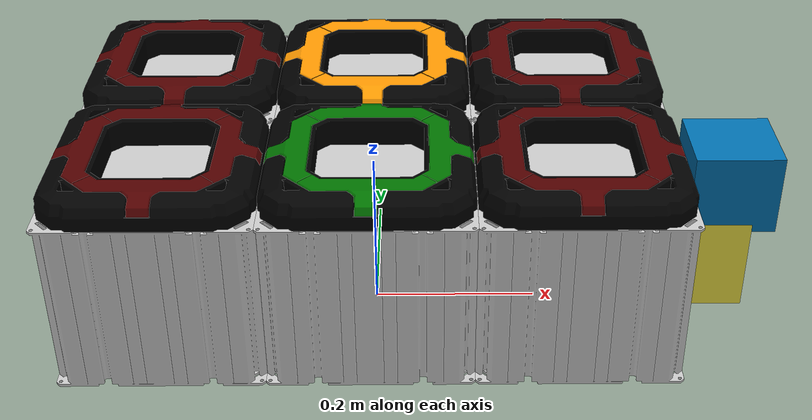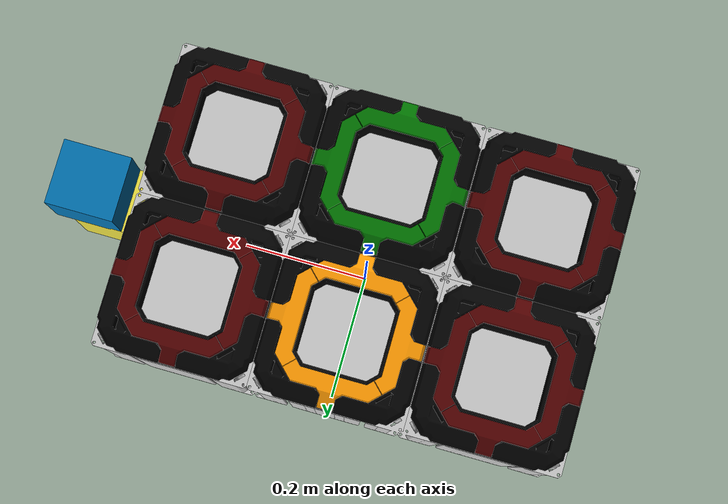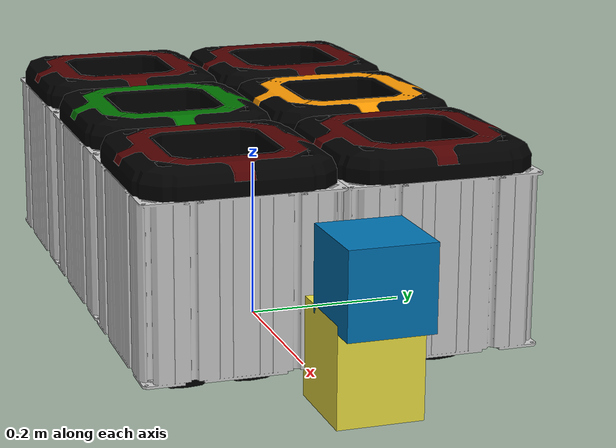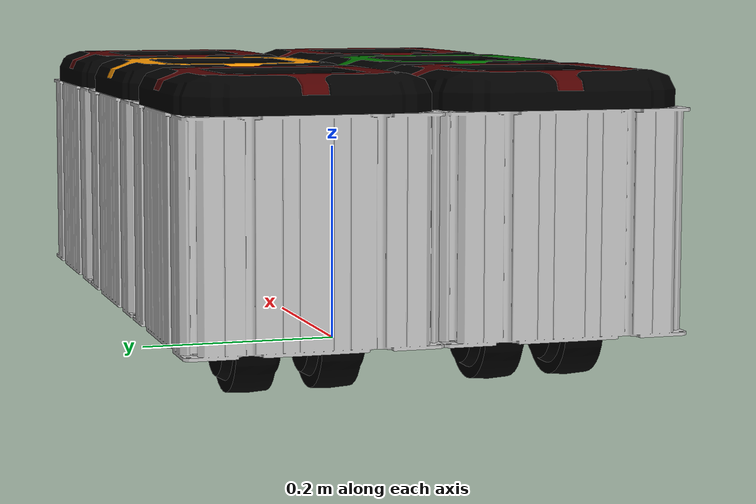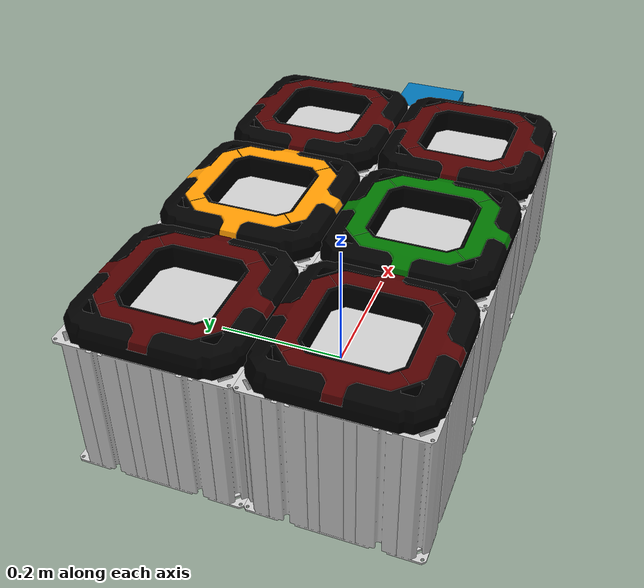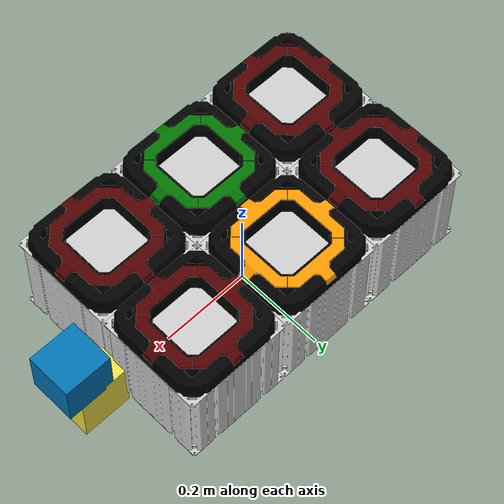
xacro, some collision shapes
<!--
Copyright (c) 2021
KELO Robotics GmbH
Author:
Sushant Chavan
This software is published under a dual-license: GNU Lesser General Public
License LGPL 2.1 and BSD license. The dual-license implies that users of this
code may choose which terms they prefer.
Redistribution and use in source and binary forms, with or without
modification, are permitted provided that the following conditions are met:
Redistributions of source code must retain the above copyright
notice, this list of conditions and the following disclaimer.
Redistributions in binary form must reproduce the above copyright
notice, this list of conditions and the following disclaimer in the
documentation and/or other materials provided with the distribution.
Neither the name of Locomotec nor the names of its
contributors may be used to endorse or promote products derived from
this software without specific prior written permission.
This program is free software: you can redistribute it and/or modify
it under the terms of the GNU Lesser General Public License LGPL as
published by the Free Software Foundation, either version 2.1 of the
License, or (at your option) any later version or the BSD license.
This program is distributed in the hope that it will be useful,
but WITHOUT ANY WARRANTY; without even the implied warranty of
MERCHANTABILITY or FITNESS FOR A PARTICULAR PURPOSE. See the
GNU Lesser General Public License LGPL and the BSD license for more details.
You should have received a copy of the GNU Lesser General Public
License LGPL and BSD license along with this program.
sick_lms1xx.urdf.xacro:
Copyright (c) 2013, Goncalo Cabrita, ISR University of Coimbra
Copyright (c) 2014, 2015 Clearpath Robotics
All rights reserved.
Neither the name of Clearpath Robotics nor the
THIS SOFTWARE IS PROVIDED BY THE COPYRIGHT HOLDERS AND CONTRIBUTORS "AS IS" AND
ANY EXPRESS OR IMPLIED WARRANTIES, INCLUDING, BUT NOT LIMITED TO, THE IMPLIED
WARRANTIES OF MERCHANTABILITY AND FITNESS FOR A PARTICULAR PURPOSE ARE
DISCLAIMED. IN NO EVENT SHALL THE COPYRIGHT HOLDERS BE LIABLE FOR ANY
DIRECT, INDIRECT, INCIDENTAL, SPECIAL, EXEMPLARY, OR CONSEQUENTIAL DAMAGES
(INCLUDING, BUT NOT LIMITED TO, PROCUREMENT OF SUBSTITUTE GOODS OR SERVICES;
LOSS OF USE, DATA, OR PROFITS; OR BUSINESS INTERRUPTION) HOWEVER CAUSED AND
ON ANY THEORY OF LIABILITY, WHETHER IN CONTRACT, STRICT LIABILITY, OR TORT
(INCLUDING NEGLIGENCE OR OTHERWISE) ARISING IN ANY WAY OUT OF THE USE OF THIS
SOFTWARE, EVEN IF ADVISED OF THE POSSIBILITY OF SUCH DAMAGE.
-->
<?xml version='1.0'?>

<robot xmlns:xacro="http://ros.org/wiki/xacro" name="robile3_config" >

    <!-- Include desired robile bricks -->
    <xacro:include filename="$(find robile_description)/urdf/robile_bricks/robile_active_wheel_brick.urdf.xacro" />
    <xacro:include filename="$(find robile_description)/urdf/robile_bricks/robile_cpu_brick.urdf.xacro" />
    <xacro:include filename="$(find robile_description)/urdf/robile_bricks/robile_master_battery_brick.urdf.xacro" />

    <link name="base_link"/>

    <!-- Build platform using robile bricks -->
    <xacro:robile_active_wheel_brick name="robile_1" parent="base_link">
        <origin xyz="0.233 0.1165 0.05" rpy="0.0 0.0 0.0"/>
    </xacro:robile_active_wheel_brick>

    <xacro:robile_active_wheel_brick name="robile_2" parent="base_link">
        <origin xyz="0.233 -0.1165 0.05" rpy="0.0 0.0 0.0"/>
    </xacro:robile_active_wheel_brick>

    <xacro:robile_cpu_brick name="robile_3" parent="base_link">
        <origin xyz="0.0 0.1165 0.05" rpy="0.0 0.0 0.0"/>
    </xacro:robile_cpu_brick>

    <xacro:robile_master_battery_brick name="robile_4" parent="base_link">
        <origin xyz="0.0 -0.1165 0.05" rpy="0.0 0.0 0.0"/>
    </xacro:robile_master_battery_brick>

    <xacro:robile_active_wheel_brick name="robile_5" parent="base_link">
        <origin xyz="-0.233 0.1165 0.05" rpy="0.0 0.0 0.0"/>
    </xacro:robile_active_wheel_brick>

    <xacro:robile_active_wheel_brick name="robile_6" parent="base_link">
        <origin xyz="-0.233 -0.1165 0.05" rpy="0.0 0.0 0.0"/>
    </xacro:robile_active_wheel_brick>

    <!-- LASER -->
    <xacro:arg name="laser_enabled" default="true" />
    <xacro:include filename="$(find robile_description)/urdf/sensors/sick_lms1xx_mount.urdf.xacro" />

    <xacro:if value="$(arg laser_enabled)">
       <xacro:sick_lms1xx_mount prefix="base"/>
       <xacro:sick_lms1xx frame="base_laser" topic="scan"/>
       <joint name="laser_mount_joint" type="fixed">
         <origin xyz="0.4 0.0 0.08" rpy="0 0 0" />
         <parent link="base_link" />
         <child link="base_laser_mount" />
       </joint>
    </xacro:if>

</robot>

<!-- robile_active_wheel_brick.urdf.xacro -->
<robot xmlns:xacro="http://www.ros.org/wiki/xacro">

    <xacro:macro name="robile_active_wheel_brick" params="name parent *origin movable_joints:=true">

        <!-- Include xacro files-->
        <xacro:include filename="$(find robile_description)/urdf/base_macros/brick_housing.urdf.xacro" />
        <xacro:include filename="$(find robile_description)/urdf/base_macros/kelo_drive.urdf.xacro" />

        <joint name="${name}_joint" type="fixed">
            <xacro:insert_block name="origin" />
            <parent link="${parent}"/>
            <child link="${name}_link" />
        </joint>

        <xacro:brick_housing name="${name}" with_wheel="true" color="red"/>

        <xacro:kelo_drive name="${name}_drive" parent="${name}_link" movable_joints="${movable_joints}">
            <origin xyz="0 0 0" rpy="0 0 0.0"/>
        </xacro:kelo_drive>

    </xacro:macro>

</robot>

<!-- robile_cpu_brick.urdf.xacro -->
<robot xmlns:xacro="http://www.ros.org/wiki/xacro">

    <xacro:macro name="robile_cpu_brick" params="name parent *origin">

        <xacro:include filename="$(find robile_description)/urdf/base_macros/brick_housing.urdf.xacro" />

        <joint name="${name}_joint" type="fixed">
            <xacro:insert_block name="origin" />
            <parent link="${parent}"/>
            <child link="${name}_link" />
        </joint>

        <xacro:brick_housing name="${name}"/>

    </xacro:macro>

</robot>

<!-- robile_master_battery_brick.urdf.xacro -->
<robot xmlns:xacro="http://www.ros.org/wiki/xacro">

    <xacro:macro name="robile_master_battery_brick" params="name parent *origin">

        <xacro:include filename="$(find robile_description)/urdf/base_macros/brick_housing.urdf.xacro" />

        <joint name="${name}_joint" type="fixed">
            <xacro:insert_block name="origin" />
            <parent link="${parent}"/>
            <child link="${name}_link" />
        </joint>

        <xacro:brick_housing name="${name}" color="green"/>

    </xacro:macro>

</robot>

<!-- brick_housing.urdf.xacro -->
<robot xmlns:xacro="http://www.ros.org/wiki/xacro">

    <xacro:macro name="brick_housing" params="name color:=yellow with_wheel:=false">

        <!-- Include required xacro files -->
        <xacro:include filename="$(find robile_description)/urdf/base_macros/common.xacro" />

        <!-- Properties for a robile brick -->
        <xacro:property name="robile_size_x" value="0.233"/>
        <xacro:property name="robile_size_y" value="0.233"/>
        <xacro:property name="robile_size_z" value="0.239"/>
        <xacro:property name="center_of_mass_x" value="0.0005"/>
        <xacro:property name="center_of_mass_y" value="0.0001"/>
        <xacro:property name="center_of_mass_z" value="0.119"/>

        <link name="${name}_link">

            <!-- Aluminium casing of the robile -->
            <visual>
                <origin xyz="0 0 0" rpy="0 0 0"/>
                <geometry>
                    <xacro:if value="${with_wheel}">
                        <mesh filename="file://$(find robile_description)/meshes/robile_brick_housing/wheeled_brick_housing.dae" scale="1 1 1"/>
                    </xacro:if>
                    <xacro:unless value="${with_wheel}">
                        <mesh filename="file://$(find robile_description)/meshes/robile_brick_housing/general_brick_housing.dae" scale="1 1 1"/>
                    </xacro:unless>
                </geometry>
            </visual>

            <!-- robile lid -->
            <visual>
                <origin xyz="0 0 0" rpy="0 0 0"/>
                <geometry>
                    <mesh filename="file://$(find robile_description)/meshes/robile_brick_housing/lid.dae" scale="1 1 1"/>
                </geometry>
            </visual>

            <!-- robile lid cover (color passed as a parameter) -->
            <visual>
                <origin xyz="0 0 0" rpy="0 0 0"/>
                <geometry>
                    <mesh filename="file://$(find robile_description)/meshes/robile_brick_housing/lid_cover_${color}.dae" scale="1 1 1"/>
                </geometry>
            </visual>

            <!-- Collision box for brick housing -->
            <collision>
                <origin xyz="${center_of_mass_x} ${center_of_mass_y} ${center_of_mass_z}" rpy="0 0 0"/>
                <geometry>
                    <box size="${robile_size_x} ${robile_size_y} ${robile_size_z}" />
                </geometry>
            </collision>

            <!-- Inertia for brick housing -->
            <xacro:cuboid_inertia mass="5.0"
                                length="${robile_size_x}"
                                breadth="${robile_size_y}"
                                height="${robile_size_z}"
                                center_of_mass_x="${center_of_mass_x}"
                                center_of_mass_y="${center_of_mass_y}"
                                center_of_mass_z="${center_of_mass_z}"/>
        </link>

    </xacro:macro>

</robot>

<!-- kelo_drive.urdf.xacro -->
<robot xmlns:xacro="http://www.ros.org/wiki/xacro">

    <xacro:macro name="kelo_drive" params="name parent *origin movable_joints:=true">

        <xacro:include filename="$(find robile_description)/urdf/base_macros/common.xacro" />
        <xacro:include filename="$(find robile_description)/urdf/base_macros/kelo_drive_wheel.urdf.xacro" />

        <!-- PIVOT -->
        <xacro:if value="${movable_joints}">
            <joint name="${name}_pivot_joint" type="continuous">
                <xacro:insert_block name="origin" />
                <axis xyz="0 0 1"/>
                <parent link="${parent}"/>
                <child link="${name}_pivot_link" />
            </joint>

            <transmission name="${name}_pivot_transmission">
                <type>transmission_interface/SimpleTransmission</type>
                <joint name="${name}_pivot_joint">
                    <hardwareInterface>hardware_interface/EffortJointInterface</hardwareInterface>
                </joint>
                <actuator name="${name}_pivot_motor">
                    <hardwareInterface>hardware_interface/EffortJointInterface</hardwareInterface>
                    <mechanicalReduction>1</mechanicalReduction>
                </actuator>
            </transmission>
        </xacro:if>
        <xacro:unless value="${movable_joints}">
            <joint name="${name}_pivot_joint" type="fixed">
                <xacro:insert_block name="origin" />
                <axis xyz="0 0 1"/>
                <parent link="${parent}"/>
                <child link="${name}_pivot_link" />
            </joint>
        </xacro:unless>

        <link name="${name}_pivot_link">
            <visual>
                <origin xyz="0 0 0" rpy="0 0 0"/>
                <geometry>
                    <mesh filename="file://$(find robile_description)/meshes/kelo_drive/kelo_drive_base.dae" scale="1 1 1"/>
                </geometry>
            </visual>

            <!--TODO: Set the correct collisions -->
            <collision>
                <origin xyz="0 0 0.07" rpy="0 0 0"/>
                <geometry>
                    <box size="0.105 0.154 0.025" />
                </geometry>
            </collision>

            <!--TODO: Set the correct inertia-->
            <xacro:cuboid_inertia mass="10.0" length="0.233" breadth="0.233" height="0.233"/>
        </link>

        <!-- LEFT HUB WHEEL -->
        <xacro:kelo_drive_wheel name="${name}_left_hub_wheel" parent="${name}_pivot_link" movable_joints="${movable_joints}">
            <origin xyz="-0.01 0.039326 0.001514" rpy="0 0 0.0"/>
        </xacro:kelo_drive_wheel>

        <!-- RIGHT HUB WHEEL -->
        <xacro:kelo_drive_wheel name="${name}_right_hub_wheel" parent="${name}_pivot_link" movable_joints="${movable_joints}">
            <origin xyz="-0.01 -0.039326 0.001514" rpy="0 0 0.0"/>
        </xacro:kelo_drive_wheel>

    </xacro:macro>

</robot>

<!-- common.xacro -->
<robot xmlns:xacro="http://www.ros.org/wiki/xacro">

    <xacro:macro name="cylinder_inertia" params="mass length radius
        center_of_mass_x:=0 center_of_mass_y:=0 center_of_mass_z:=0
        center_of_mass_roll:=0 center_of_mass_pitch:=0 center_of_mass_yaw:=0">
        <inertial>
            <origin xyz="${center_of_mass_x} ${center_of_mass_y} ${center_of_mass_z}"
                    rpy="${center_of_mass_roll} ${center_of_mass_pitch} ${center_of_mass_yaw}"/>
            <mass value="${mass}" />
            <inertia ixx="${(mass/12)*(3*radius*radius + length*length)}"
                     iyy="${(mass/12)*(3*radius*radius + length*length)}"
                     iyz="0.0" ixy="0.0" ixz="0.0"
                     izz="${(mass/2)*(radius*radius)}" />
        </inertial>
    </xacro:macro>

    <xacro:macro name="cuboid_inertia" params="mass length breadth height
        center_of_mass_x:=0 center_of_mass_y:=0 center_of_mass_z:=0
        center_of_mass_roll:=0 center_of_mass_pitch:=0 center_of_mass_yaw:=0">
        <inertial>
            <origin xyz="${center_of_mass_x} ${center_of_mass_y} ${center_of_mass_z}"
                    rpy="${center_of_mass_roll} ${center_of_mass_pitch} ${center_of_mass_yaw}"/>
            <mass value="${mass}" />
            <inertia ixx="${(mass/12)*(breadth*breadth + height*height)}"
                     iyy="${(mass/12)*(height*height + length*length)}"
                     iyz="0.0" ixy="0.0" ixz="0.0"
                     izz="${(mass/12)*(breadth*breadth + length*length)}" />
        </inertial>
    </xacro:macro>

    <xacro:macro name="sphere_inertia" params="mass radius
        center_of_mass_x:=0 center_of_mass_y:=0 center_of_mass_z:=0
        center_of_mass_roll:=0 center_of_mass_pitch:=0 center_of_mass_yaw:=0">
        <inertial>
            <origin xyz="${center_of_mass_x} ${center_of_mass_y} ${center_of_mass_z}"
                    rpy="${center_of_mass_roll} ${center_of_mass_pitch} ${center_of_mass_yaw}"/>
            <mass value="${mass}" />
            <inertia ixx="${(mass*0.4)*(radius*radius)}"
                     iyy="${(mass*0.4)*(radius*radius)}"
                     iyz="0.0" ixy="0.0" ixz="0.0"
                     izz="${(mass*0.4)*(radius*radius)}" />
        </inertial>
    </xacro:macro>

</robot>

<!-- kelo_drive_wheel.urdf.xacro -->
<robot xmlns:xacro="http://www.ros.org/wiki/xacro">

    <xacro:macro name="kelo_drive_wheel" params="name parent *origin movable_joints:=true">

        <xacro:include filename="$(find robile_description)/urdf/base_macros/common.xacro" />

        <xacro:if value="${movable_joints}">
            <joint name="${name}_joint" type="continuous">
                <xacro:insert_block name="origin" />
                <axis xyz="0 1 0"/>
                <parent link="${parent}"/>
                <child link="${name}_link" />
            </joint>

            <transmission name="${name}_transmission">
                <type>transmission_interface/SimpleTransmission</type>
                <joint name="${name}_joint">
                    <hardwareInterface>hardware_interface/EffortJointInterface</hardwareInterface>
                </joint>
                <actuator name="${name}_motor">
                    <hardwareInterface>hardware_interface/EffortJointInterface</hardwareInterface>
                    <mechanicalReduction>1</mechanicalReduction>
                </actuator>
            </transmission>
        </xacro:if>
        <xacro:unless value="${movable_joints}">
            <joint name="${name}_joint" type="fixed">
                <xacro:insert_block name="origin" />
                <axis xyz="0 1 0"/>
                <parent link="${parent}"/>
                <child link="${name}_link" />
            </joint>
        </xacro:unless>

        <link name="${name}_link">
            <visual>
                <origin xyz="0 0 0" rpy="0 0 0"/>
                <geometry>
                    <mesh filename="file://$(find robile_description)/meshes/kelo_drive/kelo_drive_wheel.dae" scale="1 1 1"/>
                </geometry>
            </visual>

            <collision>
                <origin xyz="0 0 0" rpy="1.570796327 0 0"/>
                <geometry>
                    <cylinder radius="0.0515" length="0.035"/>
                </geometry>
            </collision>

            <!--HACK: Use large cuboid inertias to fix the issue that the model breaks when JointVelocity controller is activated -->
            <xacro:cuboid_inertia mass="10.0" length="0.233" breadth="0.233" height="0.233"/>
        </link>

    </xacro:macro>

</robot>

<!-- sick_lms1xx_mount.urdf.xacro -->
<robot xmlns:xacro="http://www.ros.org/wiki/xacro">

  <xacro:include filename="$(find robile_description)/urdf/sensors/sick_lms1xx.urdf.xacro" />

  <xacro:macro name="sick_lms1xx_mount" params="prefix">

    <link name="${prefix}_laser_mount">
      <visual>
        <origin xyz="0 0 0" rpy="0 0 1.570795" />
        <geometry>
          <!-- Origin of this mesh is the base of the bracket. -->
          <mesh filename="package://robile_description/meshes/sensors/lms1xx_mount.dae" />
        </geometry>
      </visual>
      <collision>
        <origin xyz="0 0 0" rpy="0 0 1.570795" />
        <geometry>
          <box size=".1 .108 .117" />
        </geometry>
      </collision>
    </link>

    <joint name="${prefix}_laser_joint" type="fixed">
      <!-- This offset is from the base of the bracket to the LIDAR's focal point. -->
      <origin xyz="0.03 0.0 0.149" rpy="0 0 0" />
      <parent link="${prefix}_laser_mount" />
      <child link="${prefix}_laser" />
    </joint>

  </xacro:macro>

</robot>

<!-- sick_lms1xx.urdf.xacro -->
<robot xmlns:xacro="http://www.ros.org/wiki/xacro">

  <xacro:macro name="sick_lms1xx" params="frame:=laser topic:=scan sample_size:=720 update_rate:=50
               min_angle:=-2.35619 max_angle:=2.35619 min_range:=0.1 max_range:=30.0 robot_namespace:=/" >
    <link name="${frame}">
      <inertial>
        <mass value="1.1" />
        <origin xyz="0 0 0" />
        <inertia ixx="${0.0833333 * 1.1 * (0.102*0.102 + 0.152*0.152)}" ixy="0.0" ixz="0.0"
          iyy="${0.0833333 * 1.1 * (0.105*0.105 + 0.152*0.152)}" iyz="0.0"
          izz="${0.0833333 * 1.1 * (0.105*0.105 + 0.102*0.102)}" />
      </inertial>
      <visual>
        <origin xyz="0 0 0" rpy="0 0 0" />
        <geometry>
          <!-- Origin of this mesh is the focal point of the LIDAR. -->
          <mesh filename="package://robile_description/meshes/sensors/sick-lms1xx.dae" />
        </geometry>
      </visual>
      <collision>
        <origin xyz="0 0 -0.05" rpy="0 0 0" />
        <geometry>
          <box size="0.105 0.1 0.1" />
        </geometry>
      </collision>
    </link>

    <gazebo reference="${frame}">
      <turnGravityOff>true</turnGravityOff>
      <sensor type="ray" name="${frame}">
        <pose>0 0 0 0 0 0</pose>
        <visualize>false</visualize>
        <update_rate>${update_rate}</update_rate>
        <ray>
          <scan>
            <horizontal>
              <samples>${sample_size}</samples>
              <resolution>1.0</resolution>
              <min_angle>${min_angle}</min_angle>
              <max_angle>${max_angle}</max_angle>
            </horizontal>
          </scan>
          <range>
            <min>${min_range}</min>
            <max>${max_range}</max>
            <resolution>0.01</resolution>
          </range>
          <noise>
            <type>gaussian</type>
            <mean>0.0</mean>
            <stddev>0.01</stddev>
          </noise>
        </ray>
        <plugin name="gazebo_ros_laser" filename="libgazebo_ros_ray_sensor.so">
	        <ros>
          <remapping>~/out:=${topic}</remapping>
          </ros>
          <output_type>sensor_msgs/LaserScan</output_type>
        </plugin>
      </sensor>
    </gazebo>
  </xacro:macro>
</robot>
